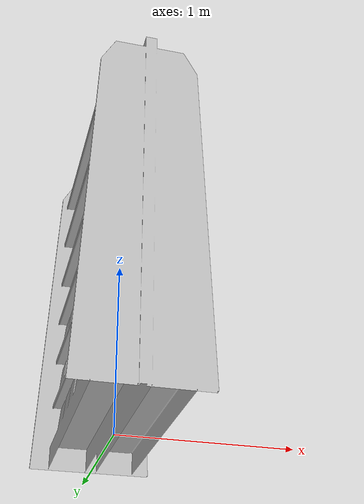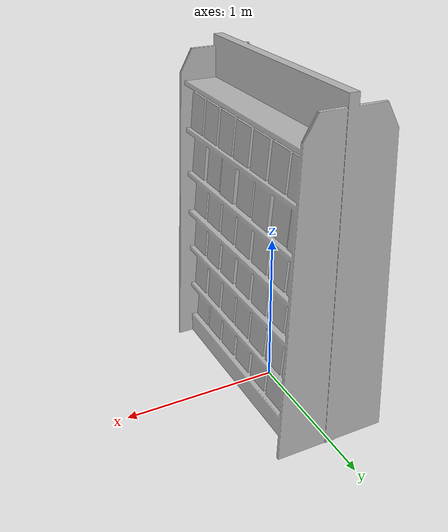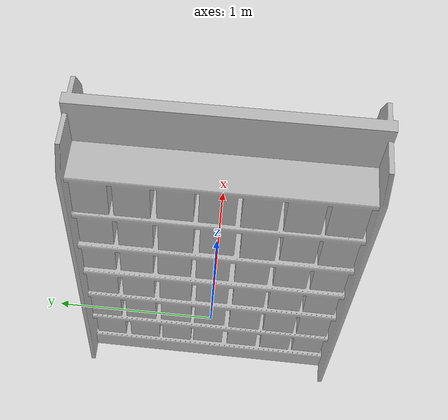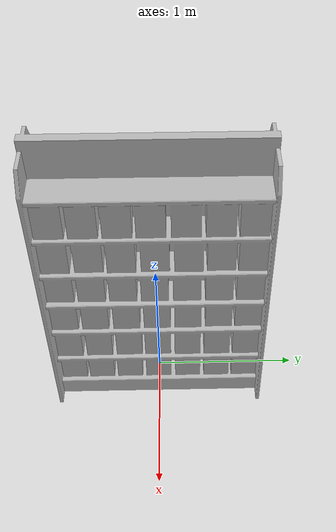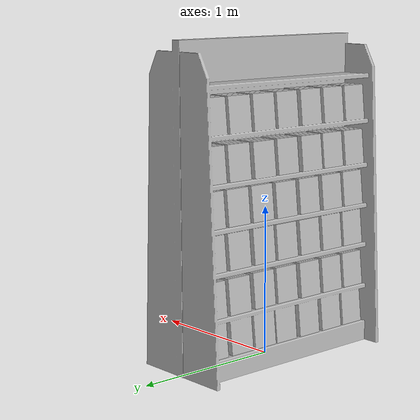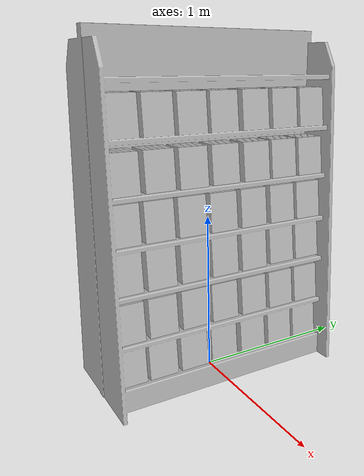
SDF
<?xml version="1.0" ?>
<sdf version="1.6">
  <model name="aws_robomaker_retail_BookshelfA_01">
    <link name="link">
      <inertial>
        <mass>50</mass>
        <inertia>
          <ixx>27.734059</ixx>
          <ixy>0</ixy>
          <ixz>0</ixz>
          <iyy>20.9360858</iyy>
          <iyz>0</iyz>
          <izz>11.359616</izz>
        </inertia>
      </inertial>
      <collision name="collision">
        <geometry>
          <mesh>
            <uri>file://models/aws_robomaker_retail_BookshelfA_01/meshes/aws_BookshelfA_01_collision.DAE</uri>
            <scale>1 1 1</scale>
          </mesh>
        </geometry>
      </collision>
      <visual name="visual">
	    <geometry>
          <mesh>
            <uri>file://models/aws_robomaker_retail_BookshelfA_01/meshes/aws_BookshelfA_01_visual.DAE</uri>
          </mesh>
        </geometry>
        <meta>
          <layer>1</layer>
        </meta>
      </visual>
    </link>
  <static>1</static>
  </model>
</sdf>
